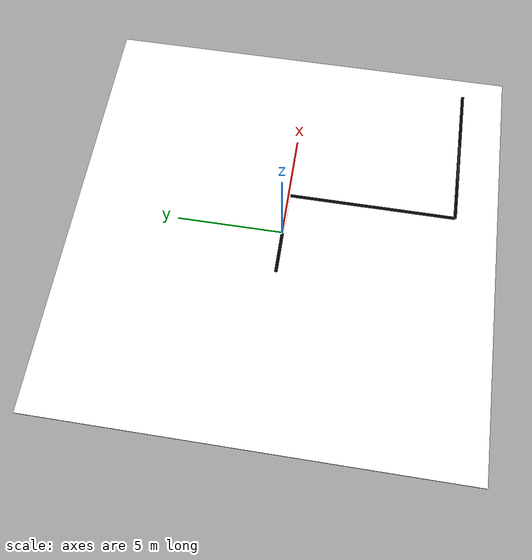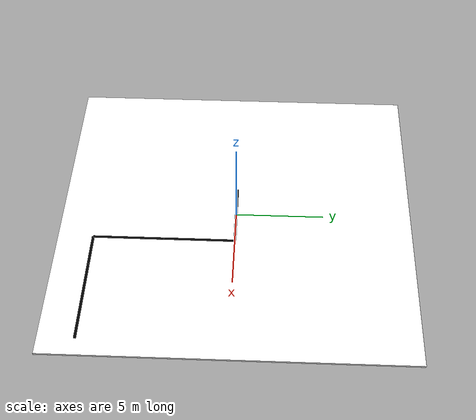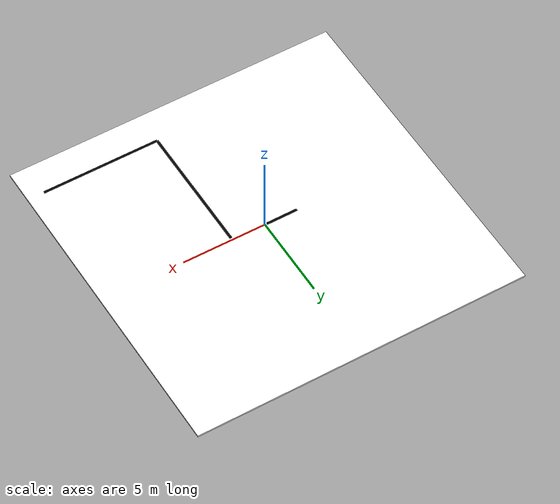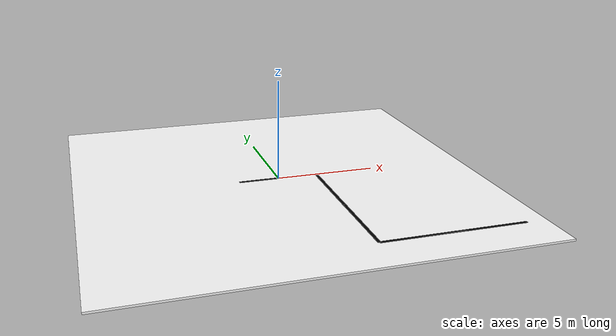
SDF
<?xml version="1.0" ?>
<sdf version="1.6">

<world name="line_world">

  <!-- ================= PHYSICS ================= -->

  <gravity>0 0 -9.81</gravity>

  <physics type="ode">
    <real_time_update_rate>1000</real_time_update_rate>
    <max_step_size>0.001</max_step_size>
  </physics>

  <!-- ================= LIGHTING ================= -->

  <scene>

    <!-- White background -->
    <background>1 1 1 1</background>

    <ambient>0.8 0.8 0.8 1</ambient>

    <shadows>false</shadows>

  </scene>

  <!-- REAL FLOOR (PURE WHITE ONLY FIXED) -->

  <model name="real_floor">

    <static>true</static>

    <link name="floor_link">

      <visual name="visual">

        <geometry>
          <box>
            <size>20 20 0.1</size>
          </box>
        </geometry>

        <!-- PURE WHITE FLOOR -->
        <material>

          <ambient>1 1 1 1</ambient>

          <diffuse>1 1 1 1</diffuse>

          <specular>0 0 0 1</specular>

          <emissive>0 0 0 1</emissive>

        </material>

      </visual>

      <collision name="collision">

        <geometry>
          <box>
            <size>20 20 0.1</size>
          </box>
        </geometry>

        <surface>

          <friction>

            <ode>

              <mu>100</mu>

              <mu2>100</mu2>

            </ode>

          </friction>

        </surface>

      </collision>

    </link>

    <pose>0 0 -0.05 0 0 0</pose>

  </model>

  <!-- ===================== LINE 1 ===================== -->

  <model name="line_1">
    <static>true</static>
    <link name="link">

      <visual name="visual">
        <geometry>
          <box>
            <size>4 0.15 0.01</size>
          </box>
        </geometry>

        <material>
          <ambient>0 0 0 1</ambient>
          <diffuse>0 0 0 1</diffuse>
          <specular>0 0 0 1</specular>
        </material>

      </visual>

      <collision name="collision">
        <geometry>
          <box>
            <size>4 0.15 0.01</size>
          </box>
        </geometry>
      </collision>

    </link>

    <pose>0 0 0.01 0 0 0</pose>

  </model>

  <!-- ===================== LINE 2 ===================== -->

  <model name="line_2">
    <static>true</static>
    <link name="link">

      <visual name="visual">
        <geometry>
          <box>
            <size>4 0.15 0.01</size>
          </box>
        </geometry>

        <material>
          <ambient>0 0 0 1</ambient>
          <diffuse>0 0 0 1</diffuse>
          <specular>0 0 0 1</specular>
        </material>

      </visual>

      <collision name="collision">
        <geometry>
          <box>
            <size>4 0.15 0.01</size>
          </box>
        </geometry>
      </collision>

    </link>

    <pose>2 -2 0.01 0 0 1.57</pose>

  </model>

  <!-- ===================== LINE 3 ===================== -->

  <model name="line_3">
    <static>true</static>
    <link name="link">

      <visual name="visual">
        <geometry>
          <box>
            <size>4 0.15 0.01</size>
          </box>
        </geometry>

        <material>
          <ambient>0 0 0 1</ambient>
          <diffuse>0 0 0 1</diffuse>
          <specular>0 0 0 1</specular>
        </material>

      </visual>

      <collision name="collision">
        <geometry>
          <box>
            <size>4 0.15 0.01</size>
          </box>
        </geometry>
      </collision>

    </link>

    <pose>2 -6 0.01 0 0 1.57</pose>

  </model>

  <!-- ===================== LINE 4 ===================== -->

  <model name="line_4">
    <static>true</static>
    <link name="link">

      <visual name="visual">
        <geometry>
          <box>
            <size>4 0.15 0.01</size>
          </box>
        </geometry>

        <material>
          <ambient>0 0 0 1</ambient>
          <diffuse>0 0 0 1</diffuse>
          <specular>0 0 0 1</specular>
        </material>

      </visual>

<collision name="collision">
        <geometry>
          <box>
            <size>4 0.15 0.01</size>
          </box>
        </geometry>
      </collision>

    </link>

    <pose>4 -8 0.01 0 0 0</pose>

  </model>

  <!-- ===================== LINE 5 ===================== -->

  <model name="line_5">
    <static>true</static>
    <link name="link">

      <visual name="visual">
        <geometry>
          <box>
            <size>5 0.15 0.01</size>
          </box>
        </geometry>

        <material>
          <ambient>0 0 0 1</ambient>
          <diffuse>0 0 0 1</diffuse>
          <specular>0 0 0 1</specular>
        </material>

      </visual>

      <collision name="collision">
        <geometry>
          <box>
            <size>5 0.15 0.01</size>
          </box>
        </geometry>
      </collision>

    </link>

    <pose>6.5 -8 0.01 0 0 0</pose>

  </model>

</world>

</sdf>
